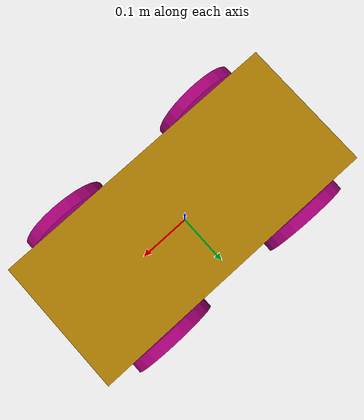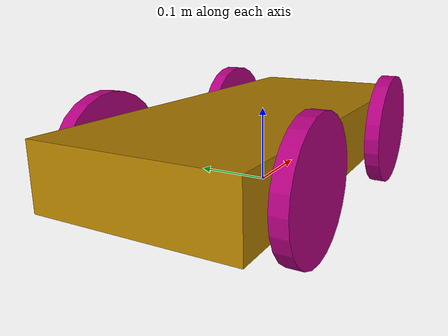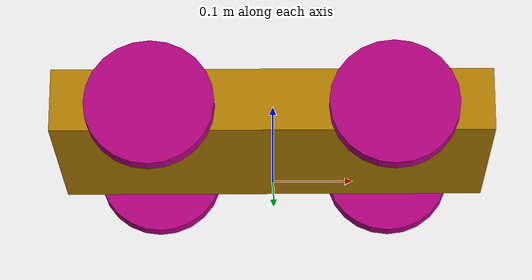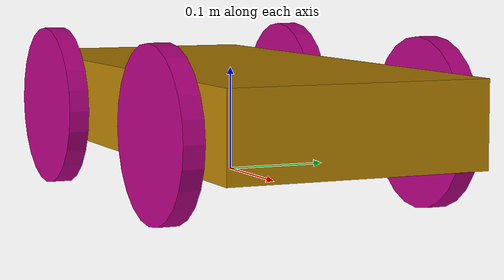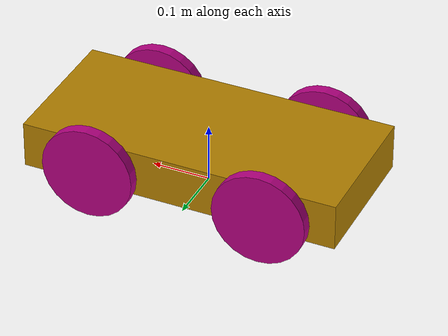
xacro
<?xml version="1.0" ?>
<robot name="demo02" xmlns:xacro="http://ros.org/wiki/xacro">

	<xacro:property name="base_link_length" value="0.08" />

	<link name="base_footprint">
		<visual>
			<geometry>
				<sphere radius="0.001" />
			</geometry>
		</visual>
	</link>

	<link name="base_link">
		<visual>
			<geometry>
				<box size="0.546 0.246 0.08" />

			</geometry>
			<origin xyz="0 0 0" rpy="0 0 0" />
			<material name="material_1">
				<color rgba="0.7 0.5 0 0.9" />
			</material>
		</visual>
	</link>

	<link name="cylinder_link_1">
		<visual>
			<geometry>
				<cylinder radius="0.08" length="0.02"/>

			</geometry>
			<origin xyz="0 0 0" rpy="1.5708 0 0" />
			<material name="material_2">
				<color rgba="0.7 0 0.5 0.9" />
			</material>
		</visual>
	</link>

	<link name="cylinder_link_2">
		<visual>
			<geometry>
				<cylinder radius="0.08" length="0.02"/>

			</geometry>
			<origin xyz="0 0 0" rpy="1.5708 0 0" />
			<material name="material_3">
				<color rgba="0.7 0 0.5 0.9" />
			</material>
		</visual>
	</link>

	<link name="cylinder_link_3">
		<visual>
			<geometry>
				<cylinder radius="0.08" length="0.02"/>

			</geometry>
			<origin xyz="0 0 0" rpy="1.5708 0 0" />
			<material name="material_3">
				<color rgba="0.7 0 0.5 0.9" />
			</material>
		</visual>
	</link>

	<link name="cylinder_link_4">
		<visual>
			<geometry>
				<cylinder radius="0.08" length="0.02"/>

			</geometry>
			<origin xyz="0 0 0" rpy="1.5708 0 0" />
			<material name="material_3">
				<color rgba="0.7 0 0.5 0.9" />
			</material>
		</visual>
	</link>

	<joint name="link2footprint" type="fixed">
		<parent link="base_footprint" />
		<child link="base_link" />

		<origin xyz="0 0 0.065" rpy="0 0 0" />
	</joint>

	<joint name="base_cylinder_1" type="continuous">
		<origin xyz="0.15 0.133 -0.01" rpy="0 0 0" />
		<parent link="base_link" />
		<child link="cylinder_link_1" />
		<axis xyz="0 1 0" />
	</joint>

	<joint name="base_cylinder_2" type="continuous">
		<origin xyz="-0.15 0.133 -0.01" rpy="0 0 0" />
		<parent link="base_link" />
		<child link="cylinder_link_2" />
		<axis xyz="0 1 0" />
	</joint>

	<joint name="base_cylinder_3" type="continuous">
		<origin xyz="0.15 -0.133 -0.01" rpy="0 0 0" />
		<parent link="base_link" />
		<child link="cylinder_link_3" />
		<axis xyz="0 1 0" />
	</joint>

	<joint name="base_cylinder_4" type="continuous">
		<origin xyz="-0.15 -0.133 -0.01" rpy="0 0 0" />
		<parent link="base_link" />
		<child link="cylinder_link_4" />
		<axis xyz="0 1 0" />
	</joint>

</robot>
